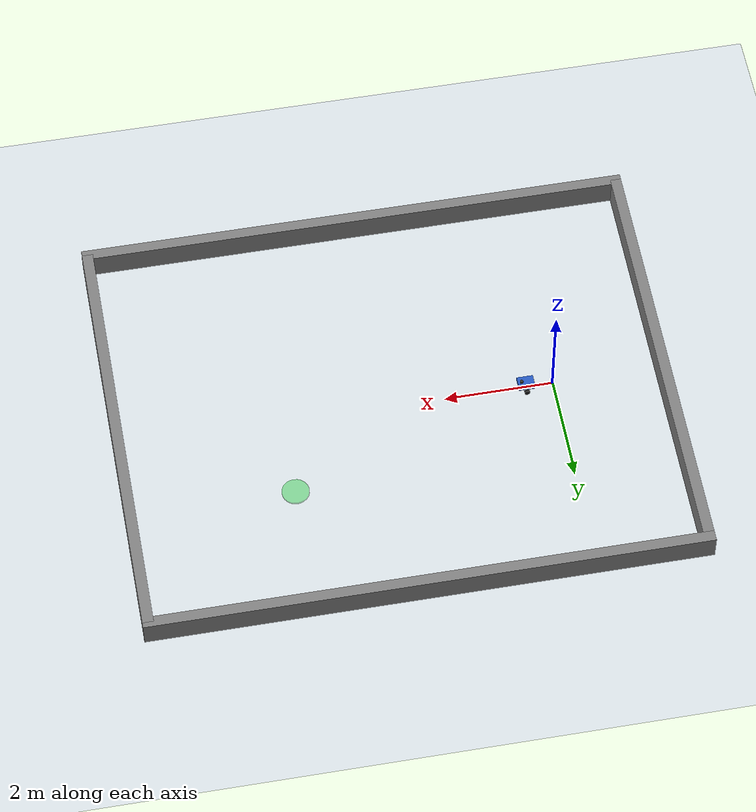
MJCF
<mujoco model="diffdrive_open">
  <!-- Open arena for go_to_goal / figure8_tracking. Same robot as scene.xml. -->
  <compiler angle="radian" balanceinertia="true" autolimits="true"/>
  <option timestep="0.002" gravity="0 0 -9.81" integrator="implicitfast"/>

  <default>
    <geom friction="1 0.5 0.01" rgba="0.7 0.7 0.7 1"/>
  </default>

  <worldbody>
    <light pos="0 0 3" dir="0 0 -1" diffuse="0.8 0.8 0.8"/>
    <geom name="floor" type="plane" size="15 8 0.05" rgba="0.85 0.88 0.9 1" friction="1 0.5 0.01"/>

    <geom name="wall_w" type="box" pos="-2.0 0 0.25" size="0.1 4.0 0.25" rgba="0.5 0.5 0.5 1"/>
    <geom name="wall_e" type="box" pos="8.0 0 0.25" size="0.1 4.0 0.25" rgba="0.5 0.5 0.5 1"/>
    <geom name="wall_n" type="box" pos="3.0 4.0 0.25" size="5.1 0.1 0.25" rgba="0.5 0.5 0.5 1"/>
    <geom name="wall_s" type="box" pos="3.0 -4.0 0.25" size="5.1 0.1 0.25" rgba="0.5 0.5 0.5 1"/>

    <!-- Visual goal marker (no collision) for go_to_goal. -->
    <geom name="goal_marker" type="cylinder" size="0.25 0.02" pos="5.0 1.5 0.02" rgba="0.2 0.8 0.3 0.5" contype="0" conaffinity="0" group="0"/>

    <body name="base" pos="0.5 0 0.05">
      <freejoint name="root"/>
      <geom name="chassis" type="box" size="0.15 0.12 0.04" pos="0 0 0.09" mass="4.0" rgba="0.15 0.35 0.75 1" group="1" contype="1" conaffinity="1"/>
      <geom name="lidar_mount" type="cylinder" size="0.03 0.02" pos="0.08 0 0.15" mass="0.05" rgba="0.2 0.2 0.2 1" contype="0" conaffinity="0" group="1"/>

      <body name="left_wheel" pos="0 0.14 0">
        <joint name="left_wheel_joint" type="hinge" axis="0 1 0" damping="0.1"/>
        <geom name="left_wheel_geom" type="cylinder" size="0.05 0.02" quat="0.7071 0.7071 0 0" mass="0.4" rgba="0.1 0.1 0.1 1" friction="1.5 0.5 0.01" group="1" contype="0" conaffinity="0"/>
      </body>
      <body name="right_wheel" pos="0 -0.14 0">
        <joint name="right_wheel_joint" type="hinge" axis="0 1 0" damping="0.1"/>
        <geom name="right_wheel_geom" type="cylinder" size="0.05 0.02" quat="0.7071 0.7071 0 0" mass="0.4" rgba="0.1 0.1 0.1 1" friction="1.5 0.5 0.01" group="1" contype="0" conaffinity="0"/>
      </body>
    </body>
  </worldbody>
</mujoco>
